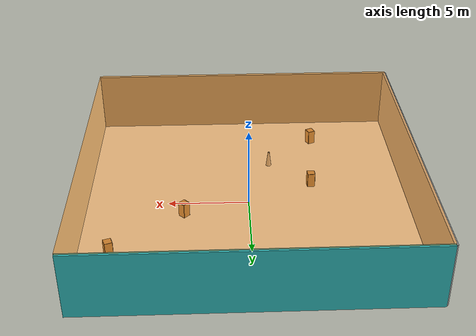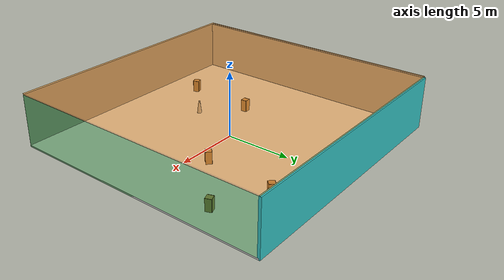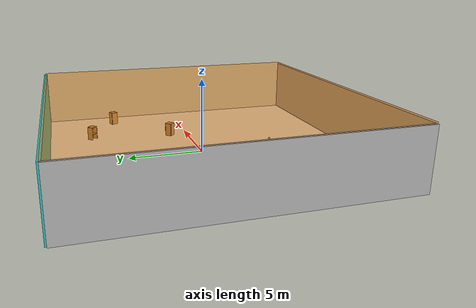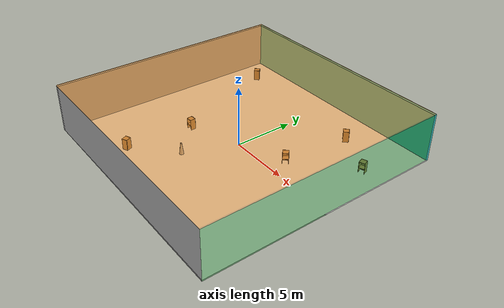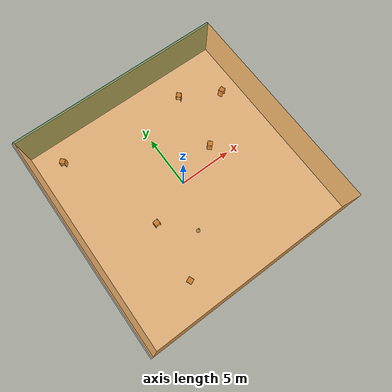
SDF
<sdf version="1.4">
 <world name="default">
  <physics type="ode">
   <max_step_size>0.001</max_step_size>
   <real_time_factor>1</real_time_factor>
   <real_time_update_rate>1000</real_time_update_rate>
   <gravity>0 0 -9.8</gravity>
  </physics>
  <scene><ambient>0.4 0.4 0.4 1</ambient><background>0.7 0.7 0.7 1</background><shadows>1</shadows></scene>
  <model name="Surrounding">
   <static>1</static>
   <link name="Ceiling">
    <collision name="Ceiling_Collision"><geometry><box><size>20 20 0.1</size></box></geometry></collision>
    <visual name="Ceiling_Visual">
     <geometry><box><size>20 20 0.1</size></box></geometry>
     <material>
      <script>
       <uri>file://media/materials/scripts/gazebo.material</uri>
       <name>Gazebo/OrangeTransparent</name>
      </script>
     </material>
    </visual>
    <pose>0 0 4.05 0 0 0</pose>
   </link>
   <link name="Wall_South">
    <collision name="Wall_South_Collision">
     <geometry><box><size>20 0 4</size></box></geometry>
     <pose>0 0 2 0 -0 0</pose>
    </collision>
    <visual name="Wall_South_Visual">
     <pose>0 0 2 0 -0 0</pose>
     <geometry><box><size>20 0 4</size></box></geometry>
     <material>
      <script><uri>file://media/materials/scripts/gazebo.material</uri><name>Gazebo/Grey</name></script>
     </material>
    </visual>
    <velocity_decay><linear>0</linear><angular>0</angular></velocity_decay>
    <pose>0 -10 0 0 -0 0</pose>
   </link>
   <link name="Wall_East">
    <collision name="Wall_21_Collision">
     <geometry><box><size>20 0 4</size></box></geometry>
     <pose>0 0 2 0 -0 0</pose>
    </collision>
    <visual name="Wall_21_Visual">
     <pose>0 0 2 0 -0 0</pose>
     <geometry><box><size>20 0 4</size></box></geometry>
     <material>
      <script><uri>file://media/materials/scripts/gazebo.material</uri><name>Gazebo/GreenTransparent</name></script>
     </material>
    </visual>
    <velocity_decay><linear>0</linear><angular>0</angular></velocity_decay>
    <pose>10 0 0 0 -0 1.5708</pose>
   </link>
   <link name="Wall_North">
    <collision name="Wall_22_Collision">
     <geometry><box><size>20 0.2 4</size></box></geometry>
     <pose>0 0 2 0 -0 0</pose>
    </collision>
    <visual name="Wall_22_Visual">
     <pose>0 0 2 0 -0 0</pose>
     <geometry><box><size>20 0.2 4</size></box></geometry>
     <material>
      <script><uri>file://media/materials/scripts/gazebo.material</uri><name>Gazebo/Turquoise</name></script>
     </material>
    </visual>
    <velocity_decay><linear>0</linear><angular>0</angular></velocity_decay>
    <pose>0 10 0 0 -0 0</pose>
   </link>
   <link name="Wall_West">
    <collision name="Wall_23_Collision">
     <geometry><box><size>20 0.2 4</size></box></geometry>
     <pose>0 0 2 0 -0 0</pose>
    </collision>
    <visual name="Wall_23_Visual">
     <pose>0 0 2 0 -0 0</pose>
     <geometry><box><size>20 0.2 4</size></box></geometry>
     <material>
      <script><uri>file://media/materials/scripts/gazebo.material</uri><name>Gazebo/CloudySky</name></script>
     </material>
    </visual>
    <velocity_decay><linear>0</linear><angular>0</angular></velocity_decay>
    <pose>-10 0 0 0 0 -1.5708</pose>
   </link>
   <link name="Ground_link">
    <collision name="collision">
     <pose>0 0 .05 0 -0 0</pose>
     <geometry><box><size>20 20 0.1</size></box></geometry>
    </collision>
    <visual name="visual">
     <pose>0 0 .05 0 -0 0</pose>
     <geometry><box><size>20 20 0.1</size></box></geometry>
     <material>
      <script><uri>file://media/materials/scripts/gazebo.material</uri><name>Gazebo/White</name></script>
     </material>
    </visual>
   </link>
   <static>1</static>
  </model>
  <spherical_coordinates>
   <surface_model>EARTH_WGS84</surface_model>
   <latitude_deg>0</latitude_deg>
   <longitude_deg>0</longitude_deg>
   <elevation>0</elevation>
   <heading_deg>0</heading_deg>
  </spherical_coordinates>
  <light name="lightball_0" type="diffuse">
   <diffuse>0.8 0.8 0.8 1</diffuse>
   <specular>0.2 0.2 0.2 1</specular>
   <attenuation>
    <range>100</range>
    <constant>0.7</constant>
    <linear>0.01</linear>
    <quadratic>0.001</quadratic>
   </attenuation>
   <direction>-0.5 0.1 -0.9</direction>
   <pose>2.56780820774 5.12414430008 0.933683733203 0 0 0</pose>
  </light>
  <light name="lightball_1" type="diffuse">
   <diffuse>0.8 0.8 0.8 1</diffuse>
   <specular>0.2 0.2 0.2 1</specular>
   <attenuation>
    <range>100</range>
    <constant>0.7</constant>
    <linear>0.01</linear>
    <quadratic>0.001</quadratic>
   </attenuation>
   <direction>-0.5 0.1 -0.9</direction>
   <pose>-2.45487193576 9.51544039212 2.25015919174 0 0 0</pose>
  </light>
  <light name="lightball_2" type="diffuse">
   <diffuse>0.8 0.8 0.8 1</diffuse>
   <specular>0.2 0.2 0.2 1</specular>
   <attenuation>
    <range>100</range>
    <constant>0.7</constant>
    <linear>0.01</linear>
    <quadratic>0.001</quadratic>
   </attenuation>
   <direction>-0.5 0.1 -0.9</direction>
   <pose>8.42869867531 -7.69722680287 2.63779157646 0 0 0</pose>
  </light>
  <light name="lightball_3" type="diffuse">
   <diffuse>0.8 0.8 0.8 1</diffuse>
   <specular>0.2 0.2 0.2 1</specular>
   <attenuation>
    <range>100</range>
    <constant>0.7</constant>
    <linear>0.01</linear>
    <quadratic>0.001</quadratic>
   </attenuation>
   <direction>-0.5 0.1 -0.9</direction>
   <pose>2.00244103914 -4.99120814304 0.833050255576 0 0 0</pose>
  </light>
  <light name="lightball_4" type="diffuse">
   <diffuse>0.8 0.8 0.8 1</diffuse>
   <specular>0.2 0.2 0.2 1</specular>
   <attenuation>
    <range>100</range>
    <constant>0.7</constant>
    <linear>0.01</linear>
    <quadratic>0.001</quadratic>
   </attenuation>
   <direction>-0.5 0.1 -0.9</direction>
   <pose>-2.98789456278 -3.37714055624 3.10554824336 0 0 0</pose>
  </light>
  <light name="lightball_5" type="diffuse">
   <diffuse>0.8 0.8 0.8 1</diffuse>
   <specular>0.2 0.2 0.2 1</specular>
   <attenuation>
    <range>100</range>
    <constant>0.7</constant>
    <linear>0.01</linear>
    <quadratic>0.001</quadratic>
   </attenuation>
   <direction>-0.5 0.1 -0.9</direction>
   <pose>-2.981596416 -7.79122620013 2.01384176938 0 0 0</pose>
  </light>
  <light name="lightball_6" type="diffuse">
   <diffuse>0.8 0.8 0.8 1</diffuse>
   <specular>0.2 0.2 0.2 1</specular>
   <attenuation>
    <range>100</range>
    <constant>0.7</constant>
    <linear>0.01</linear>
    <quadratic>0.001</quadratic>
   </attenuation>
   <direction>-0.5 0.1 -0.9</direction>
   <pose>-7.92454965796 2.43740603785 2.66449409937 0 0 0</pose>
  </light>
  <light name="lightball_7" type="diffuse">
   <diffuse>0.8 0.8 0.8 1</diffuse>
   <specular>0.2 0.2 0.2 1</specular>
   <attenuation>
    <range>100</range>
    <constant>0.7</constant>
    <linear>0.01</linear>
    <quadratic>0.001</quadratic>
   </attenuation>
   <direction>-0.5 0.1 -0.9</direction>
   <pose>-2.82347444984 9.54514467959 0.90692363296 0 0 0</pose>
  </light>
  <light name="lightball_8" type="diffuse">
   <diffuse>0.8 0.8 0.8 1</diffuse>
   <specular>0.2 0.2 0.2 1</specular>
   <attenuation>
    <range>100</range>
    <constant>0.7</constant>
    <linear>0.01</linear>
    <quadratic>0.001</quadratic>
   </attenuation>
   <direction>-0.5 0.1 -0.9</direction>
   <pose>-6.19746486016 1.49559576958 1.72037366762 0 0 0</pose>
  </light>
  <light name="lightball_9" type="diffuse">
   <diffuse>0.8 0.8 0.8 1</diffuse>
   <specular>0.2 0.2 0.2 1</specular>
   <attenuation>
    <range>100</range>
    <constant>0.7</constant>
    <linear>0.01</linear>
    <quadratic>0.001</quadratic>
   </attenuation>
   <direction>-0.5 0.1 -0.9</direction>
   <pose>-9.54956128963 7.37469829633 2.11180167048 0 0 0</pose>
  </light>
  <light name="lightball_10" type="diffuse">
   <diffuse>0.8 0.8 0.8 1</diffuse>
   <specular>0.2 0.2 0.2 1</specular>
   <attenuation>
    <range>100</range>
    <constant>0.7</constant>
    <linear>0.01</linear>
    <quadratic>0.001</quadratic>
   </attenuation>
   <direction>-0.5 0.1 -0.9</direction>
   <pose>8.06820333542 9.99247009268 0.673353744839 0 0 0</pose>
  </light>
  <light name="lightball_11" type="diffuse">
   <diffuse>0.8 0.8 0.8 1</diffuse>
   <specular>0.2 0.2 0.2 1</specular>
   <attenuation>
    <range>100</range>
    <constant>0.7</constant>
    <linear>0.01</linear>
    <quadratic>0.001</quadratic>
   </attenuation>
   <direction>-0.5 0.1 -0.9</direction>
   <pose>0.024921966991 -1.35803089757 0.745487489358 0 0 0</pose>
  </light>
  <light name="lightball_12" type="diffuse">
   <diffuse>0.8 0.8 0.8 1</diffuse>
   <specular>0.2 0.2 0.2 1</specular>
   <attenuation>
    <range>100</range>
    <constant>0.7</constant>
    <linear>0.01</linear>
    <quadratic>0.001</quadratic>
   </attenuation>
   <direction>-0.5 0.1 -0.9</direction>
   <pose>9.7067813917 3.35350875334 3.73580538026 0 0 0</pose>
  </light>
  <include><uri>model://cabinet</uri><pose>-7.63101279452 7.71422538456 0 0 0 0.797257086934</pose></include>
  <include><uri>model://cabinet</uri><pose>-4.56419556749 -7.21088343762 0 0 0 0.406886071927</pose></include>
  <include><uri>model://cabinet</uri><pose>-4.04831476371 -1.72102625048 0 0 0 1.62798345553</pose></include>
  <include>
   <uri>model://construction_cone</uri>
   <pose>-1.49022950648 -4.2442450764 0 0 0 2.40288932706</pose>
  </include>
  <include><uri>model://cabinet</uri><pose>3.97900911026 1.35155924821 0 0 0 2.37546866447</pose></include>
  <include><uri>model://cabinet</uri><pose>4.56550469574 6.95584325341 0 0 0 0.794461897386</pose></include>
  <include><uri>model://cabinet</uri><pose>8.1835399576 5.0395516609 0 0 0 1.91126549996</pose></include>
 </world>
</sdf>

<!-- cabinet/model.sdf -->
<sdf version="1.5">
  <model name="cabinet">
    <static>true</static>
    <link name="cabinet_bottom_plate">
      <inertial>
        <pose>0 0 -1 0 0 0</pose>
        <inertia>
          <ixx>2.050000</ixx>
          <ixy>0</ixy>
          <ixz>0</ixz>
          <iyy>2.050000</iyy>
          <iyz>0</iyz>
          <izz>2.050000</izz>
        </inertia>
        <mass>25.000000</mass>
      </inertial>
      <collision name="cabinet_bottom_plate_geom">
        <pose>0 0 0.010000 0 0 0</pose>
        <geometry>
          <box>
            <size>0.450000 0.450000 0.020000</size>
          </box>
        </geometry>
      </collision>
      <visual name="cabinet_bottom_plate_geom_visual">
        <pose>0 0 0.010000 0 0 0</pose>
        <geometry>
          <box>
            <size>0.450000 0.450000 0.020000</size>
          </box>
        </geometry>
        <material>
          <script>
            <uri>model://media/materials/scripts/gazebo.material</uri>
            <name>Gazebo/Wood</name>
          </script>
        </material>
      </visual>
      <collision name="cabinet_bottom_plate_geom_cabinet_back_plate">
        <pose>0.235000 0 0.510000 0 0 0</pose>
        <geometry>
          <box>
            <size>0.020000 0.450000 1.020000</size>
          </box>
        </geometry>
      </collision>
      <visual name="cabinet_bottom_plate_geom_cabinet_back_plate_visual">
        <pose>0.235000 0 0.510000 0 0 0</pose>
        <geometry>
          <box>
            <size>0.020000 0.450000 1.020000</size>
          </box>
        </geometry>
        <material>
          <script>
            <uri>model://media/materials/scripts/gazebo.material</uri>
            <name>Gazebo/Wood</name>
          </script>
        </material>
      </visual>
      <collision name="cabinet_bottom_plate_geom_cabinet_left_plate">
        <pose>0 0.235000 0.510000 0 0 0</pose>
        <geometry>
          <box>
            <size>0.450000 0.020000 1.020000</size>
          </box>
        </geometry>
      </collision>
      <visual name="cabinet_bottom_plate_geom_cabinet_left_plate_visual">
        <pose>0 0.235000 0.510000 0 0 0</pose>
        <geometry>
          <box>
            <size>0.450000 0.020000 1.020000</size>
          </box>
        </geometry>
        <material>
          <script>
            <uri>model://media/materials/scripts/gazebo.material</uri>
            <name>Gazebo/Wood</name>
          </script>
        </material>
      </visual>
      <collision name="cabinet_bottom_plate_geom_cabinet_middle_plate">
        <pose>0 0 0.510000 0 0 0</pose>
        <geometry>
          <box>
            <size>0.450000 0.450000 0.020000</size>
          </box>
        </geometry>
      </collision>
      <visual name="cabinet_bottom_plate_geom_cabinet_middle_plate_visual">
        <pose>0 0 0.510000 0 0 0</pose>
        <geometry>
          <box>
            <size>0.450000 0.450000 0.020000</size>
          </box>
        </geometry>
        <material>
          <script>
            <uri>model://media/materials/scripts/gazebo.material</uri>
            <name>Gazebo/Wood</name>
          </script>
        </material>
      </visual>
      <collision name="cabinet_bottom_plate_geom_cabinet_right_plate">
        <pose>0 -0.235000 0.510000 0 0 0</pose>
        <geometry>
          <box>
            <size>0.450000 0.020000 1.020000</size>
          </box>
        </geometry>
      </collision>
      <visual name="cabinet_bottom_plate_geom_cabinet_right_plate_visual">
        <pose>0 -0.235000 0.510000 0 0 0</pose>
        <geometry>
          <box>
            <size>0.450000 0.020000 1.020000</size>
          </box>
        </geometry>
        <material>
          <script>
            <uri>model://media/materials/scripts/gazebo.material</uri>
            <name>Gazebo/Wood</name>
          </script>
        </material>
      </visual>
      <collision name="cabinet_bottom_plate_geom_cabinet_top_plate">
        <pose>0 0 1.010000 0 0 0</pose>
        <geometry>
          <box>
            <size>0.450000 0.450000 0.020000</size>
          </box>
        </geometry>
      </collision>
      <visual name="cabinet_bottom_plate_geom_cabinet_top_plate_visual">
        <pose>0 0 1.010000 0 0 0</pose>
        <geometry>
          <box>
            <size>0.450000 0.450000 0.020000</size>
          </box>
        </geometry>
        <material>
          <script>
            <uri>model://media/materials/scripts/gazebo.material</uri>
            <name>Gazebo/Wood</name>
          </script>
        </material>
      </visual>
    </link>
  </model>
</sdf>

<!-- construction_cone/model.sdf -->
<sdf version="1.5">
  <model name="Construction Cone">
    <link name="link">
      <collision name="collision">
        <geometry>
          <mesh>
            <scale>10 10 10</scale>
            <uri>file://isr-testbed/construction_cone/meshes/construction_cone.dae</uri>
          </mesh>
        </geometry>
      </collision>
      <visual name="visual">
        <geometry>
          <mesh>
            <scale>10 10 10</scale>
            <uri>file://isr-testbed/construction_cone/meshes/construction_cone.dae</uri>
          </mesh>
        </geometry>
      </visual>
    </link>
  </model>
</sdf>
